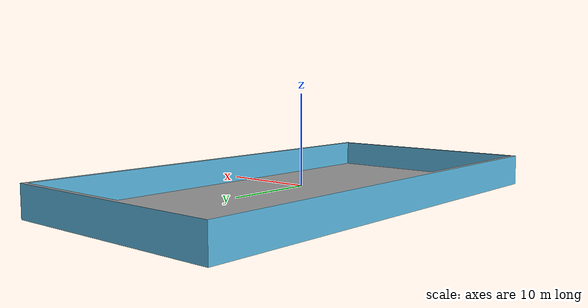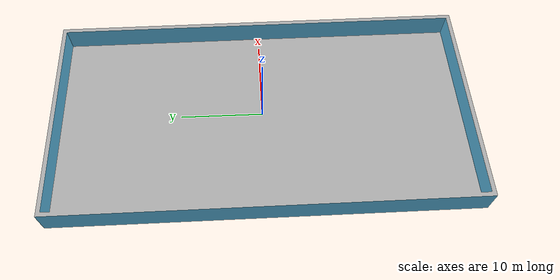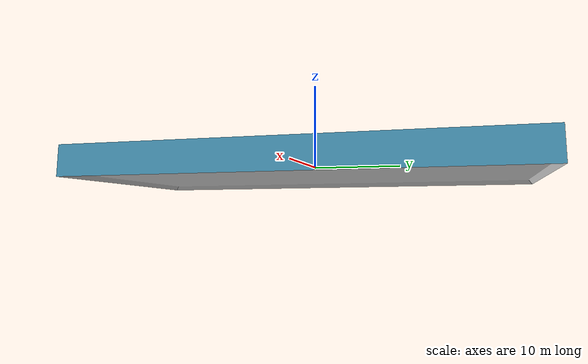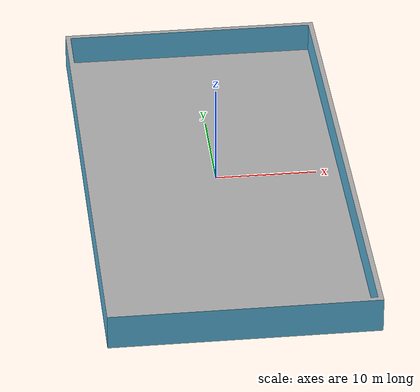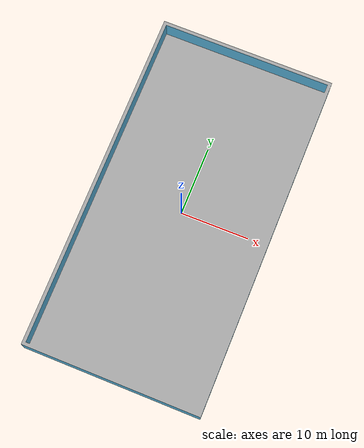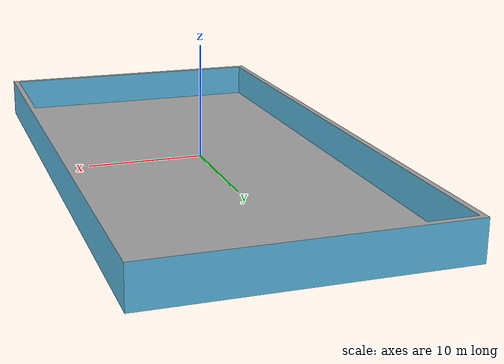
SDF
<?xml version="1.0"?>
<sdf version="1.9">
  <model name="pool">
    <static>true</static>
    <pose>0 0 -1.5 0 0 0</pose>

    <link name="pool_link">
      <collision name="collision">
        <geometry>
          <mesh>
            <uri>model://pool/pool.dae</uri>
            <scale>0.001 0.001 0.001</scale>
          </mesh>
        </geometry>
      </collision>

      <visual name="visual">
        <geometry>
          <mesh>
            <uri>model://pool/pool.dae</uri>
            <scale>0.001 0.001 0.001</scale>
          </mesh>
        </geometry>
      </visual>
    </link>
  </model>
</sdf>
